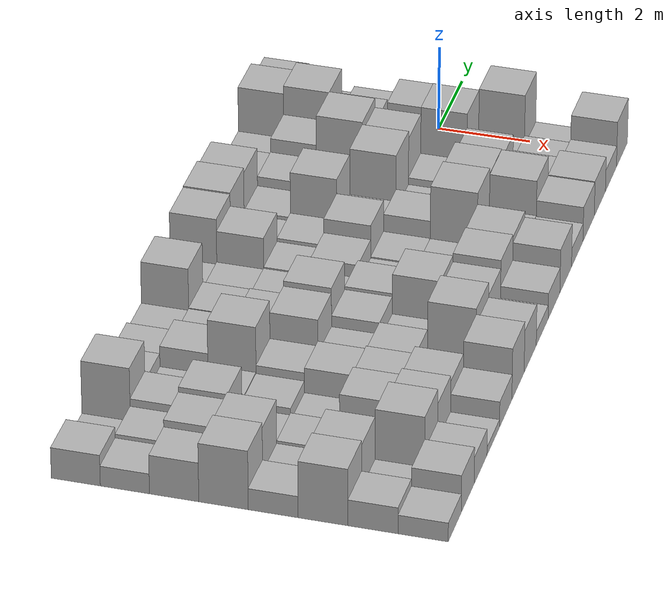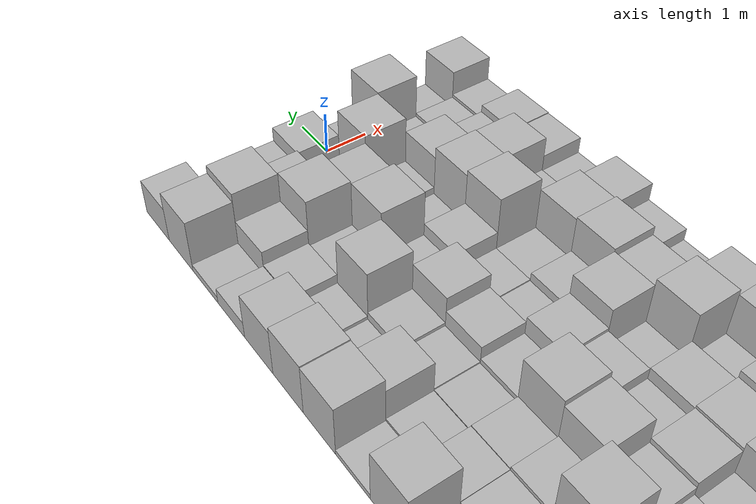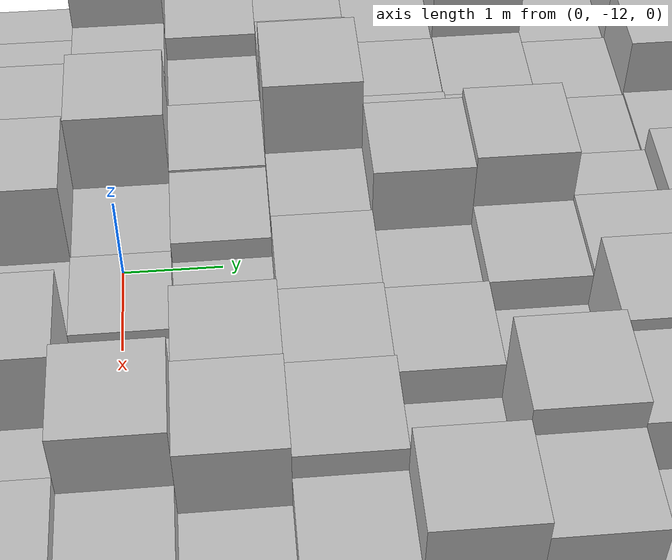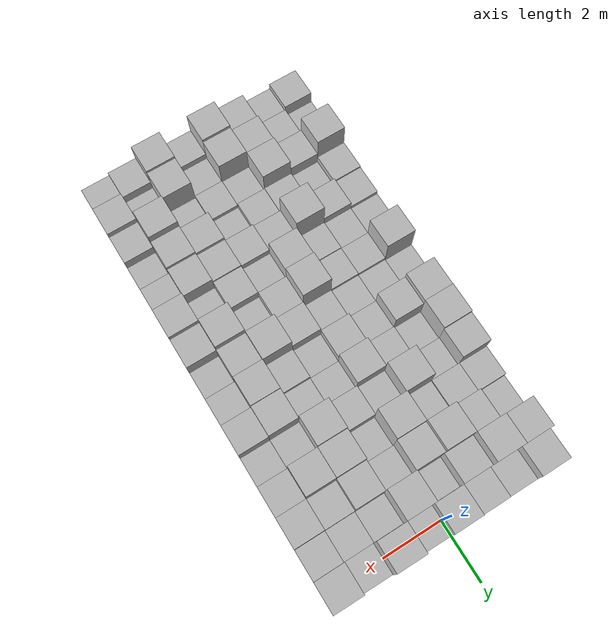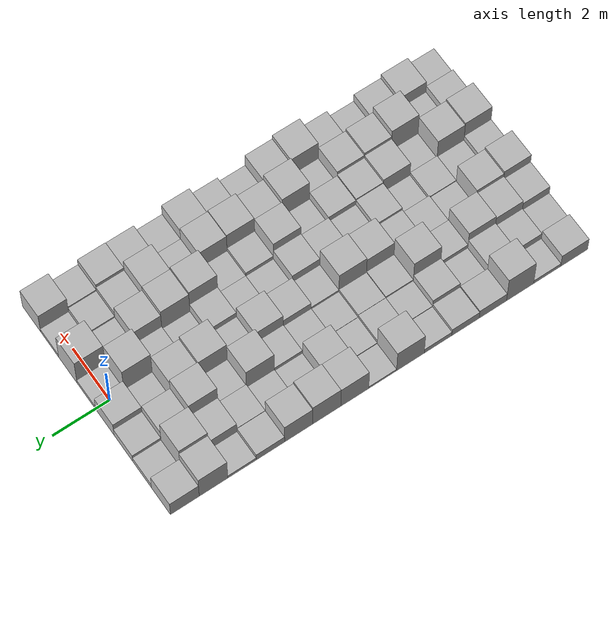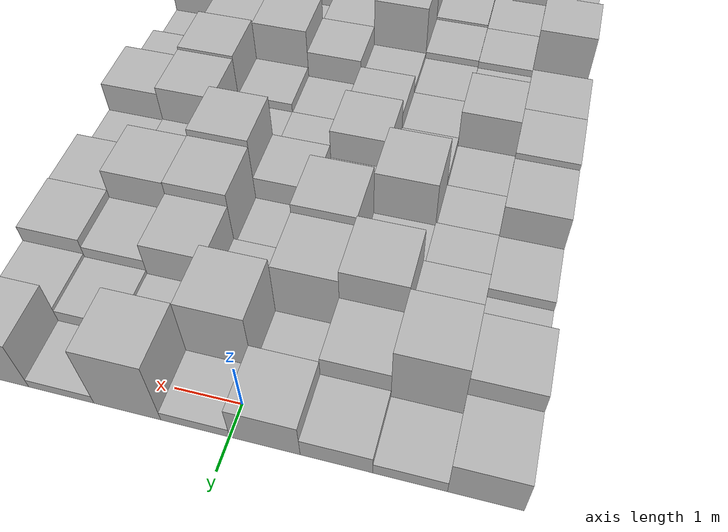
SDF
<sdf version="1.6">
 <model name="Terrain">
  <static>true</static>
  <link name="box_0_0">
   <pose>-3.5 0.0 0.417745159737 0 0 0</pose>
   <inertial>
    <mass>1.0</mass>
    <inertia><ixx>0.083</ixx><ixy>0.0</ixy><ixz>0.0</ixz><iyy>0.083</iyy><iyz>0.0</iyz><izz>0.083</izz></inertia>
   </inertial>
   <collision name="collision"><geometry><box><size>1.0 1.0 0.835490319475</size></box></geometry></collision>
   <visual name="visual"><geometry><box><size>1.0 1.0 0.835490319475</size></box></geometry></visual>
  </link>
  <link name="box_0_1">
   <pose>-3.5 -1.0 0.628804138089 0 0 0</pose>
   <inertial>
    <mass>1.0</mass>
    <inertia><ixx>0.083</ixx><ixy>0.0</ixy><ixz>0.0</ixz><iyy>0.083</iyy><iyz>0.0</iyz><izz>0.083</izz></inertia>
   </inertial>
   <collision name="collision"><geometry><box><size>1.0 1.0 1.25760827618</size></box></geometry></collision>
   <visual name="visual"><geometry><box><size>1.0 1.0 1.25760827618</size></box></geometry></visual>
  </link>
  <link name="box_0_2">
   <pose>-3.5 -2.0 0.0851426585516 0 0 0</pose>
   <inertial>
    <mass>1.0</mass>
    <inertia><ixx>0.083</ixx><ixy>0.0</ixy><ixz>0.0</ixz><iyy>0.083</iyy><iyz>0.0</iyz><izz>0.083</izz></inertia>
   </inertial>
   <collision name="collision"><geometry><box><size>1.0 1.0 0.170285317103</size></box></geometry></collision>
   <visual name="visual"><geometry><box><size>1.0 1.0 0.170285317103</size></box></geometry></visual>
  </link>
  <link name="box_0_3">
   <pose>-3.5 -3.0 0.195820164618 0 0 0</pose>
   <inertial>
    <mass>1.0</mass>
    <inertia><ixx>0.083</ixx><ixy>0.0</ixy><ixz>0.0</ixz><iyy>0.083</iyy><iyz>0.0</iyz><izz>0.083</izz></inertia>
   </inertial>
   <collision name="collision"><geometry><box><size>1.0 1.0 0.391640329236</size></box></geometry></collision>
   <visual name="visual"><geometry><box><size>1.0 1.0 0.391640329236</size></box></geometry></visual>
  </link>
  <link name="box_0_4">
   <pose>-3.5 -4.0 0.556168339486 0 0 0</pose>
   <inertial>
    <mass>1.0</mass>
    <inertia><ixx>0.083</ixx><ixy>0.0</ixy><ixz>0.0</ixz><iyy>0.083</iyy><iyz>0.0</iyz><izz>0.083</izz></inertia>
   </inertial>
   <collision name="collision"><geometry><box><size>1.0 1.0 1.11233667897</size></box></geometry></collision>
   <visual name="visual"><geometry><box><size>1.0 1.0 1.11233667897</size></box></geometry></visual>
  </link>
  <link name="box_0_5">
   <pose>-3.5 -5.0 0.619294533796 0 0 0</pose>
   <inertial>
    <mass>1.0</mass>
    <inertia><ixx>0.083</ixx><ixy>0.0</ixy><ixz>0.0</ixz><iyy>0.083</iyy><iyz>0.0</iyz><izz>0.083</izz></inertia>
   </inertial>
   <collision name="collision"><geometry><box><size>1.0 1.0 1.23858906759</size></box></geometry></collision>
   <visual name="visual"><geometry><box><size>1.0 1.0 1.23858906759</size></box></geometry></visual>
  </link>
  <link name="box_0_6">
   <pose>-3.5 -6.0 0.604735536653 0 0 0</pose>
   <inertial>
    <mass>1.0</mass>
    <inertia><ixx>0.083</ixx><ixy>0.0</ixy><ixz>0.0</ixz><iyy>0.083</iyy><iyz>0.0</iyz><izz>0.083</izz></inertia>
   </inertial>
   <collision name="collision"><geometry><box><size>1.0 1.0 1.20947107331</size></box></geometry></collision>
   <visual name="visual"><geometry><box><size>1.0 1.0 1.20947107331</size></box></geometry></visual>
  </link>
  <link name="box_0_7">
   <pose>-3.5 -7.0 0.0607612955176 0 0 0</pose>
   <inertial>
    <mass>1.0</mass>
    <inertia><ixx>0.083</ixx><ixy>0.0</ixy><ixz>0.0</ixz><iyy>0.083</iyy><iyz>0.0</iyz><izz>0.083</izz></inertia>
   </inertial>
   <collision name="collision"><geometry><box><size>1.0 1.0 0.121522591035</size></box></geometry></collision>
   <visual name="visual"><geometry><box><size>1.0 1.0 0.121522591035</size></box></geometry></visual>
  </link>
  <link name="box_0_8">
   <pose>-3.5 -8.0 0.630093040695 0 0 0</pose>
   <inertial>
    <mass>1.0</mass>
    <inertia><ixx>0.083</ixx><ixy>0.0</ixy><ixz>0.0</ixz><iyy>0.083</iyy><iyz>0.0</iyz><izz>0.083</izz></inertia>
   </inertial>
   <collision name="collision"><geometry><box><size>1.0 1.0 1.26018608139</size></box></geometry></collision>
   <visual name="visual"><geometry><box><size>1.0 1.0 1.26018608139</size></box></geometry></visual>
  </link>
  <link name="box_0_9">
   <pose>-3.5 -9.0 0.132783228985 0 0 0</pose>
   <inertial>
    <mass>1.0</mass>
    <inertia><ixx>0.083</ixx><ixy>0.0</ixy><ixz>0.0</ixz><iyy>0.083</iyy><iyz>0.0</iyz><izz>0.083</izz></inertia>
   </inertial>
   <collision name="collision"><geometry><box><size>1.0 1.0 0.26556645797</size></box></geometry></collision>
   <visual name="visual"><geometry><box><size>1.0 1.0 0.26556645797</size></box></geometry></visual>
  </link>
  <link name="box_0_10">
   <pose>-3.5 -10.0 0.214963397513 0 0 0</pose>
   <inertial>
    <mass>1.0</mass>
    <inertia><ixx>0.083</ixx><ixy>0.0</ixy><ixz>0.0</ixz><iyy>0.083</iyy><iyz>0.0</iyz><izz>0.083</izz></inertia>
   </inertial>
   <collision name="collision"><geometry><box><size>1.0 1.0 0.429926795026</size></box></geometry></collision>
   <visual name="visual"><geometry><box><size>1.0 1.0 0.429926795026</size></box></geometry></visual>
  </link>
  <link name="box_0_11">
   <pose>-3.5 -11.0 0.255203327798 0 0 0</pose>
   <inertial>
    <mass>1.0</mass>
    <inertia><ixx>0.083</ixx><ixy>0.0</ixy><ixz>0.0</ixz><iyy>0.083</iyy><iyz>0.0</iyz><izz>0.083</izz></inertia>
   </inertial>
   <collision name="collision"><geometry><box><size>1.0 1.0 0.510406655596</size></box></geometry></collision>
   <visual name="visual"><geometry><box><size>1.0 1.0 0.510406655596</size></box></geometry></visual>
  </link>
  <link name="box_0_12">
   <pose>-3.5 -12.0 0.726490676676 0 0 0</pose>
   <inertial>
    <mass>1.0</mass>
    <inertia><ixx>0.083</ixx><ixy>0.0</ixy><ixz>0.0</ixz><iyy>0.083</iyy><iyz>0.0</iyz><izz>0.083</izz></inertia>
   </inertial>
   <collision name="collision"><geometry><box><size>1.0 1.0 1.45298135335</size></box></geometry></collision>
   <visual name="visual"><geometry><box><size>1.0 1.0 1.45298135335</size></box></geometry></visual>
  </link>
  <link name="box_0_13">
   <pose>-3.5 -13.0 0.10314080423 0 0 0</pose>
   <inertial>
    <mass>1.0</mass>
    <inertia><ixx>0.083</ixx><ixy>0.0</ixy><ixz>0.0</ixz><iyy>0.083</iyy><iyz>0.0</iyz><izz>0.083</izz></inertia>
   </inertial>
   <collision name="collision"><geometry><box><size>1.0 1.0 0.206281608459</size></box></geometry></collision>
   <visual name="visual"><geometry><box><size>1.0 1.0 0.206281608459</size></box></geometry></visual>
  </link>
  <link name="box_0_14">
   <pose>-3.5 -14.0 0.362036572515 0 0 0</pose>
   <inertial>
    <mass>1.0</mass>
    <inertia><ixx>0.083</ixx><ixy>0.0</ixy><ixz>0.0</ixz><iyy>0.083</iyy><iyz>0.0</iyz><izz>0.083</izz></inertia>
   </inertial>
   <collision name="collision"><geometry><box><size>1.0 1.0 0.724073145029</size></box></geometry></collision>
   <visual name="visual"><geometry><box><size>1.0 1.0 0.724073145029</size></box></geometry></visual>
  </link>
  <link name="box_1_0">
   <pose>-2.5 0.0 0.13550543962 0 0 0</pose>
   <inertial>
    <mass>1.0</mass>
    <inertia><ixx>0.083</ixx><ixy>0.0</ixy><ixz>0.0</ixz><iyy>0.083</iyy><iyz>0.0</iyz><izz>0.083</izz></inertia>
   </inertial>
   <collision name="collision"><geometry><box><size>1.0 1.0 0.27101087924</size></box></geometry></collision>
   <visual name="visual"><geometry><box><size>1.0 1.0 0.27101087924</size></box></geometry></visual>
  </link>
  <link name="box_1_1">
   <pose>-2.5 -1.0 0.726013910653 0 0 0</pose>
   <inertial>
    <mass>1.0</mass>
    <inertia><ixx>0.083</ixx><ixy>0.0</ixy><ixz>0.0</ixz><iyy>0.083</iyy><iyz>0.0</iyz><izz>0.083</izz></inertia>
   </inertial>
   <collision name="collision"><geometry><box><size>1.0 1.0 1.45202782131</size></box></geometry></collision>
   <visual name="visual"><geometry><box><size>1.0 1.0 1.45202782131</size></box></geometry></visual>
  </link>
  <link name="box_1_2">
   <pose>-2.5 -2.0 0.375129767033 0 0 0</pose>
   <inertial>
    <mass>1.0</mass>
    <inertia><ixx>0.083</ixx><ixy>0.0</ixy><ixz>0.0</ixz><iyy>0.083</iyy><iyz>0.0</iyz><izz>0.083</izz></inertia>
   </inertial>
   <collision name="collision"><geometry><box><size>1.0 1.0 0.750259534066</size></box></geometry></collision>
   <visual name="visual"><geometry><box><size>1.0 1.0 0.750259534066</size></box></geometry></visual>
  </link>
  <link name="box_1_3">
   <pose>-2.5 -3.0 0.208997817152 0 0 0</pose>
   <inertial>
    <mass>1.0</mass>
    <inertia><ixx>0.083</ixx><ixy>0.0</ixy><ixz>0.0</ixz><iyy>0.083</iyy><iyz>0.0</iyz><izz>0.083</izz></inertia>
   </inertial>
   <collision name="collision"><geometry><box><size>1.0 1.0 0.417995634303</size></box></geometry></collision>
   <visual name="visual"><geometry><box><size>1.0 1.0 0.417995634303</size></box></geometry></visual>
  </link>
  <link name="box_1_4">
   <pose>-2.5 -4.0 0.0964454472175 0 0 0</pose>
   <inertial>
    <mass>1.0</mass>
    <inertia><ixx>0.083</ixx><ixy>0.0</ixy><ixz>0.0</ixz><iyy>0.083</iyy><iyz>0.0</iyz><izz>0.083</izz></inertia>
   </inertial>
   <collision name="collision"><geometry><box><size>1.0 1.0 0.192890894435</size></box></geometry></collision>
   <visual name="visual"><geometry><box><size>1.0 1.0 0.192890894435</size></box></geometry></visual>
  </link>
  <link name="box_1_5">
   <pose>-2.5 -5.0 0.0562978745284 0 0 0</pose>
   <inertial>
    <mass>1.0</mass>
    <inertia><ixx>0.083</ixx><ixy>0.0</ixy><ixz>0.0</ixz><iyy>0.083</iyy><iyz>0.0</iyz><izz>0.083</izz></inertia>
   </inertial>
   <collision name="collision"><geometry><box><size>1.0 1.0 0.112595749057</size></box></geometry></collision>
   <visual name="visual"><geometry><box><size>1.0 1.0 0.112595749057</size></box></geometry></visual>
  </link>
  <link name="box_1_6">
   <pose>-2.5 -6.0 0.460396959695 0 0 0</pose>
   <inertial>
    <mass>1.0</mass>
    <inertia><ixx>0.083</ixx><ixy>0.0</ixy><ixz>0.0</ixz><iyy>0.083</iyy><iyz>0.0</iyz><izz>0.083</izz></inertia>
   </inertial>
   <collision name="collision"><geometry><box><size>1.0 1.0 0.920793919391</size></box></geometry></collision>
   <visual name="visual"><geometry><box><size>1.0 1.0 0.920793919391</size></box></geometry></visual>
  </link>
  <link name="box_1_7">
   <pose>-2.5 -7.0 0.0869456284371 0 0 0</pose>
   <inertial>
    <mass>1.0</mass>
    <inertia><ixx>0.083</ixx><ixy>0.0</ixy><ixz>0.0</ixz><iyy>0.083</iyy><iyz>0.0</iyz><izz>0.083</izz></inertia>
   </inertial>
   <collision name="collision"><geometry><box><size>1.0 1.0 0.173891256874</size></box></geometry></collision>
   <visual name="visual"><geometry><box><size>1.0 1.0 0.173891256874</size></box></geometry></visual>
  </link>
  <link name="box_1_8">
   <pose>-2.5 -8.0 0.161309622204 0 0 0</pose>
   <inertial>
    <mass>1.0</mass>
    <inertia><ixx>0.083</ixx><ixy>0.0</ixy><ixz>0.0</ixz><iyy>0.083</iyy><iyz>0.0</iyz><izz>0.083</izz></inertia>
   </inertial>
   <collision name="collision"><geometry><box><size>1.0 1.0 0.322619244408</size></box></geometry></collision>
   <visual name="visual"><geometry><box><size>1.0 1.0 0.322619244408</size></box></geometry></visual>
  </link>
  <link name="box_1_9">
   <pose>-2.5 -9.0 0.152661184607 0 0 0</pose>
   <inertial>
    <mass>1.0</mass>
    <inertia><ixx>0.083</ixx><ixy>0.0</ixy><ixz>0.0</ixz><iyy>0.083</iyy><iyz>0.0</iyz><izz>0.083</izz></inertia>
   </inertial>
   <collision name="collision"><geometry><box><size>1.0 1.0 0.305322369214</size></box></geometry></collision>
   <visual name="visual"><geometry><box><size>1.0 1.0 0.305322369214</size></box></geometry></visual>
  </link>
  <link name="box_1_10">
   <pose>-2.5 -10.0 0.341582008617 0 0 0</pose>
   <inertial>
    <mass>1.0</mass>
    <inertia><ixx>0.083</ixx><ixy>0.0</ixy><ixz>0.0</ixz><iyy>0.083</iyy><iyz>0.0</iyz><izz>0.083</izz></inertia>
   </inertial>
   <collision name="collision"><geometry><box><size>1.0 1.0 0.683164017234</size></box></geometry></collision>
   <visual name="visual"><geometry><box><size>1.0 1.0 0.683164017234</size></box></geometry></visual>
  </link>
  <link name="box_1_11">
   <pose>-2.5 -11.0 0.0978201423521 0 0 0</pose>
   <inertial>
    <mass>1.0</mass>
    <inertia><ixx>0.083</ixx><ixy>0.0</ixy><ixz>0.0</ixz><iyy>0.083</iyy><iyz>0.0</iyz><izz>0.083</izz></inertia>
   </inertial>
   <collision name="collision"><geometry><box><size>1.0 1.0 0.195640284704</size></box></geometry></collision>
   <visual name="visual"><geometry><box><size>1.0 1.0 0.195640284704</size></box></geometry></visual>
  </link>
  <link name="box_1_12">
   <pose>-2.5 -12.0 0.367014219254 0 0 0</pose>
   <inertial>
    <mass>1.0</mass>
    <inertia><ixx>0.083</ixx><ixy>0.0</ixy><ixz>0.0</ixz><iyy>0.083</iyy><iyz>0.0</iyz><izz>0.083</izz></inertia>
   </inertial>
   <collision name="collision"><geometry><box><size>1.0 1.0 0.734028438509</size></box></geometry></collision>
   <visual name="visual"><geometry><box><size>1.0 1.0 0.734028438509</size></box></geometry></visual>
  </link>
  <link name="box_1_13">
   <pose>-2.5 -13.0 0.279296993047 0 0 0</pose>
   <inertial>
    <mass>1.0</mass>
    <inertia><ixx>0.083</ixx><ixy>0.0</ixy><ixz>0.0</ixz><iyy>0.083</iyy><iyz>0.0</iyz><izz>0.083</izz></inertia>
   </inertial>
   <collision name="collision"><geometry><box><size>1.0 1.0 0.558593986095</size></box></geometry></collision>
   <visual name="visual"><geometry><box><size>1.0 1.0 0.558593986095</size></box></geometry></visual>
  </link>
  <link name="box_1_14">
   <pose>-2.5 -14.0 0.235284861385 0 0 0</pose>
   <inertial>
    <mass>1.0</mass>
    <inertia><ixx>0.083</ixx><ixy>0.0</ixy><ixz>0.0</ixz><iyy>0.083</iyy><iyz>0.0</iyz><izz>0.083</izz></inertia>
   </inertial>
   <collision name="collision"><geometry><box><size>1.0 1.0 0.47056972277</size></box></geometry></collision>
   <visual name="visual"><geometry><box><size>1.0 1.0 0.47056972277</size></box></geometry></visual>
  </link>
  <link name="box_2_0">
   <pose>-1.5 0.0 0.216664329808 0 0 0</pose>
   <inertial>
    <mass>1.0</mass>
    <inertia><ixx>0.083</ixx><ixy>0.0</ixy><ixz>0.0</ixz><iyy>0.083</iyy><iyz>0.0</iyz><izz>0.083</izz></inertia>
   </inertial>
   <collision name="collision"><geometry><box><size>1.0 1.0 0.433328659617</size></box></geometry></collision>
   <visual name="visual"><geometry><box><size>1.0 1.0 0.433328659617</size></box></geometry></visual>
  </link>
  <link name="box_2_1">
   <pose>-1.5 -1.0 0.426060375249 0 0 0</pose>
   <inertial>
    <mass>1.0</mass>
    <inertia><ixx>0.083</ixx><ixy>0.0</ixy><ixz>0.0</ixz><iyy>0.083</iyy><iyz>0.0</iyz><izz>0.083</izz></inertia>
   </inertial>
   <collision name="collision"><geometry><box><size>1.0 1.0 0.852120750499</size></box></geometry></collision>
   <visual name="visual"><geometry><box><size>1.0 1.0 0.852120750499</size></box></geometry></visual>
  </link>
  <link name="box_2_2">
   <pose>-1.5 -2.0 0.738666099266 0 0 0</pose>
   <inertial>
    <mass>1.0</mass>
    <inertia><ixx>0.083</ixx><ixy>0.0</ixy><ixz>0.0</ixz><iyy>0.083</iyy><iyz>0.0</iyz><izz>0.083</izz></inertia>
   </inertial>
   <collision name="collision"><geometry><box><size>1.0 1.0 1.47733219853</size></box></geometry></collision>
   <visual name="visual"><geometry><box><size>1.0 1.0 1.47733219853</size></box></geometry></visual>
  </link>
  <link name="box_2_3">
   <pose>-1.5 -3.0 0.172789882983 0 0 0</pose>
   <inertial>
    <mass>1.0</mass>
    <inertia><ixx>0.083</ixx><ixy>0.0</ixy><ixz>0.0</ixz><iyy>0.083</iyy><iyz>0.0</iyz><izz>0.083</izz></inertia>
   </inertial>
   <collision name="collision"><geometry><box><size>1.0 1.0 0.345579765965</size></box></geometry></collision>
   <visual name="visual"><geometry><box><size>1.0 1.0 0.345579765965</size></box></geometry></visual>
  </link>
  <link name="box_2_4">
   <pose>-1.5 -4.0 0.645655087552 0 0 0</pose>
   <inertial>
    <mass>1.0</mass>
    <inertia><ixx>0.083</ixx><ixy>0.0</ixy><ixz>0.0</ixz><iyy>0.083</iyy><iyz>0.0</iyz><izz>0.083</izz></inertia>
   </inertial>
   <collision name="collision"><geometry><box><size>1.0 1.0 1.2913101751</size></box></geometry></collision>
   <visual name="visual"><geometry><box><size>1.0 1.0 1.2913101751</size></box></geometry></visual>
  </link>
  <link name="box_2_5">
   <pose>-1.5 -5.0 0.151310680941 0 0 0</pose>
   <inertial>
    <mass>1.0</mass>
    <inertia><ixx>0.083</ixx><ixy>0.0</ixy><ixz>0.0</ixz><iyy>0.083</iyy><iyz>0.0</iyz><izz>0.083</izz></inertia>
   </inertial>
   <collision name="collision"><geometry><box><size>1.0 1.0 0.302621361882</size></box></geometry></collision>
   <visual name="visual"><geometry><box><size>1.0 1.0 0.302621361882</size></box></geometry></visual>
  </link>
  <link name="box_2_6">
   <pose>-1.5 -6.0 0.1122067063 0 0 0</pose>
   <inertial>
    <mass>1.0</mass>
    <inertia><ixx>0.083</ixx><ixy>0.0</ixy><ixz>0.0</ixz><iyy>0.083</iyy><iyz>0.0</iyz><izz>0.083</izz></inertia>
   </inertial>
   <collision name="collision"><geometry><box><size>1.0 1.0 0.224413412601</size></box></geometry></collision>
   <visual name="visual"><geometry><box><size>1.0 1.0 0.224413412601</size></box></geometry></visual>
  </link>
  <link name="box_2_7">
   <pose>-1.5 -7.0 0.0967583786873 0 0 0</pose>
   <inertial>
    <mass>1.0</mass>
    <inertia><ixx>0.083</ixx><ixy>0.0</ixy><ixz>0.0</ixz><iyy>0.083</iyy><iyz>0.0</iyz><izz>0.083</izz></inertia>
   </inertial>
   <collision name="collision"><geometry><box><size>1.0 1.0 0.193516757375</size></box></geometry></collision>
   <visual name="visual"><geometry><box><size>1.0 1.0 0.193516757375</size></box></geometry></visual>
  </link>
  <link name="box_2_8">
   <pose>-1.5 -8.0 0.169127132474 0 0 0</pose>
   <inertial>
    <mass>1.0</mass>
    <inertia><ixx>0.083</ixx><ixy>0.0</ixy><ixz>0.0</ixz><iyy>0.083</iyy><iyz>0.0</iyz><izz>0.083</izz></inertia>
   </inertial>
   <collision name="collision"><geometry><box><size>1.0 1.0 0.338254264948</size></box></geometry></collision>
   <visual name="visual"><geometry><box><size>1.0 1.0 0.338254264948</size></box></geometry></visual>
  </link>
  <link name="box_2_9">
   <pose>-1.5 -9.0 0.194800044003 0 0 0</pose>
   <inertial>
    <mass>1.0</mass>
    <inertia><ixx>0.083</ixx><ixy>0.0</ixy><ixz>0.0</ixz><iyy>0.083</iyy><iyz>0.0</iyz><izz>0.083</izz></inertia>
   </inertial>
   <collision name="collision"><geometry><box><size>1.0 1.0 0.389600088005</size></box></geometry></collision>
   <visual name="visual"><geometry><box><size>1.0 1.0 0.389600088005</size></box></geometry></visual>
  </link>
  <link name="box_2_10">
   <pose>-1.5 -10.0 0.743552029229 0 0 0</pose>
   <inertial>
    <mass>1.0</mass>
    <inertia><ixx>0.083</ixx><ixy>0.0</ixy><ixz>0.0</ixz><iyy>0.083</iyy><iyz>0.0</iyz><izz>0.083</izz></inertia>
   </inertial>
   <collision name="collision"><geometry><box><size>1.0 1.0 1.48710405846</size></box></geometry></collision>
   <visual name="visual"><geometry><box><size>1.0 1.0 1.48710405846</size></box></geometry></visual>
  </link>
  <link name="box_2_11">
   <pose>-1.5 -11.0 0.207563838125 0 0 0</pose>
   <inertial>
    <mass>1.0</mass>
    <inertia><ixx>0.083</ixx><ixy>0.0</ixy><ixz>0.0</ixz><iyy>0.083</iyy><iyz>0.0</iyz><izz>0.083</izz></inertia>
   </inertial>
   <collision name="collision"><geometry><box><size>1.0 1.0 0.41512767625</size></box></geometry></collision>
   <visual name="visual"><geometry><box><size>1.0 1.0 0.41512767625</size></box></geometry></visual>
  </link>
  <link name="box_2_12">
   <pose>-1.5 -12.0 0.598522405695 0 0 0</pose>
   <inertial>
    <mass>1.0</mass>
    <inertia><ixx>0.083</ixx><ixy>0.0</ixy><ixz>0.0</ixz><iyy>0.083</iyy><iyz>0.0</iyz><izz>0.083</izz></inertia>
   </inertial>
   <collision name="collision"><geometry><box><size>1.0 1.0 1.19704481139</size></box></geometry></collision>
   <visual name="visual"><geometry><box><size>1.0 1.0 1.19704481139</size></box></geometry></visual>
  </link>
  <link name="box_2_13">
   <pose>-1.5 -13.0 0.539018685183 0 0 0</pose>
   <inertial>
    <mass>1.0</mass>
    <inertia><ixx>0.083</ixx><ixy>0.0</ixy><ixz>0.0</ixz><iyy>0.083</iyy><iyz>0.0</iyz><izz>0.083</izz></inertia>
   </inertial>
   <collision name="collision"><geometry><box><size>1.0 1.0 1.07803737037</size></box></geometry></collision>
   <visual name="visual"><geometry><box><size>1.0 1.0 1.07803737037</size></box></geometry></visual>
  </link>
  <link name="box_2_14">
   <pose>-1.5 -14.0 0.457222023088 0 0 0</pose>
   <inertial>
    <mass>1.0</mass>
    <inertia><ixx>0.083</ixx><ixy>0.0</ixy><ixz>0.0</ixz><iyy>0.083</iyy><iyz>0.0</iyz><izz>0.083</izz></inertia>
   </inertial>
   <collision name="collision"><geometry><box><size>1.0 1.0 0.914444046175</size></box></geometry></collision>
   <visual name="visual"><geometry><box><size>1.0 1.0 0.914444046175</size></box></geometry></visual>
  </link>
  <link name="box_3_0">
   <pose>-0.5 0.0 0.389048587632 0 0 0</pose>
   <inertial>
    <mass>1.0</mass>
    <inertia><ixx>0.083</ixx><ixy>0.0</ixy><ixz>0.0</ixz><iyy>0.083</iyy><iyz>0.0</iyz><izz>0.083</izz></inertia>
   </inertial>
   <collision name="collision"><geometry><box><size>1.0 1.0 0.778097175265</size></box></geometry></collision>
   <visual name="visual"><geometry><box><size>1.0 1.0 0.778097175265</size></box></geometry></visual>
  </link>
  <link name="box_3_1">
   <pose>-0.5 -1.0 0.05966804592 0 0 0</pose>
   <inertial>
    <mass>1.0</mass>
    <inertia><ixx>0.083</ixx><ixy>0.0</ixy><ixz>0.0</ixz><iyy>0.083</iyy><iyz>0.0</iyz><izz>0.083</izz></inertia>
   </inertial>
   <collision name="collision"><geometry><box><size>1.0 1.0 0.11933609184</size></box></geometry></collision>
   <visual name="visual"><geometry><box><size>1.0 1.0 0.11933609184</size></box></geometry></visual>
  </link>
  <link name="box_3_2">
   <pose>-0.5 -2.0 0.626262475751 0 0 0</pose>
   <inertial>
    <mass>1.0</mass>
    <inertia><ixx>0.083</ixx><ixy>0.0</ixy><ixz>0.0</ixz><iyy>0.083</iyy><iyz>0.0</iyz><izz>0.083</izz></inertia>
   </inertial>
   <collision name="collision"><geometry><box><size>1.0 1.0 1.2525249515</size></box></geometry></collision>
   <visual name="visual"><geometry><box><size>1.0 1.0 1.2525249515</size></box></geometry></visual>
  </link>
  <link name="box_3_3">
   <pose>-0.5 -3.0 0.714838587176 0 0 0</pose>
   <inertial>
    <mass>1.0</mass>
    <inertia><ixx>0.083</ixx><ixy>0.0</ixy><ixz>0.0</ixz><iyy>0.083</iyy><iyz>0.0</iyz><izz>0.083</izz></inertia>
   </inertial>
   <collision name="collision"><geometry><box><size>1.0 1.0 1.42967717435</size></box></geometry></collision>
   <visual name="visual"><geometry><box><size>1.0 1.0 1.42967717435</size></box></geometry></visual>
  </link>
  <link name="box_3_4">
   <pose>-0.5 -4.0 0.15687675474 0 0 0</pose>
   <inertial>
    <mass>1.0</mass>
    <inertia><ixx>0.083</ixx><ixy>0.0</ixy><ixz>0.0</ixz><iyy>0.083</iyy><iyz>0.0</iyz><izz>0.083</izz></inertia>
   </inertial>
   <collision name="collision"><geometry><box><size>1.0 1.0 0.313753509479</size></box></geometry></collision>
   <visual name="visual"><geometry><box><size>1.0 1.0 0.313753509479</size></box></geometry></visual>
  </link>
  <link name="box_3_5">
   <pose>-0.5 -5.0 0.474329483885 0 0 0</pose>
   <inertial>
    <mass>1.0</mass>
    <inertia><ixx>0.083</ixx><ixy>0.0</ixy><ixz>0.0</ixz><iyy>0.083</iyy><iyz>0.0</iyz><izz>0.083</izz></inertia>
   </inertial>
   <collision name="collision"><geometry><box><size>1.0 1.0 0.94865896777</size></box></geometry></collision>
   <visual name="visual"><geometry><box><size>1.0 1.0 0.94865896777</size></box></geometry></visual>
  </link>
  <link name="box_3_6">
   <pose>-0.5 -6.0 0.305637160407 0 0 0</pose>
   <inertial>
    <mass>1.0</mass>
    <inertia><ixx>0.083</ixx><ixy>0.0</ixy><ixz>0.0</ixz><iyy>0.083</iyy><iyz>0.0</iyz><izz>0.083</izz></inertia>
   </inertial>
   <collision name="collision"><geometry><box><size>1.0 1.0 0.611274320813</size></box></geometry></collision>
   <visual name="visual"><geometry><box><size>1.0 1.0 0.611274320813</size></box></geometry></visual>
  </link>
  <link name="box_3_7">
   <pose>-0.5 -7.0 0.155432009846 0 0 0</pose>
   <inertial>
    <mass>1.0</mass>
    <inertia><ixx>0.083</ixx><ixy>0.0</ixy><ixz>0.0</ixz><iyy>0.083</iyy><iyz>0.0</iyz><izz>0.083</izz></inertia>
   </inertial>
   <collision name="collision"><geometry><box><size>1.0 1.0 0.310864019692</size></box></geometry></collision>
   <visual name="visual"><geometry><box><size>1.0 1.0 0.310864019692</size></box></geometry></visual>
  </link>
  <link name="box_3_8">
   <pose>-0.5 -8.0 0.661415609099 0 0 0</pose>
   <inertial>
    <mass>1.0</mass>
    <inertia><ixx>0.083</ixx><ixy>0.0</ixy><ixz>0.0</ixz><iyy>0.083</iyy><iyz>0.0</iyz><izz>0.083</izz></inertia>
   </inertial>
   <collision name="collision"><geometry><box><size>1.0 1.0 1.3228312182</size></box></geometry></collision>
   <visual name="visual"><geometry><box><size>1.0 1.0 1.3228312182</size></box></geometry></visual>
  </link>
  <link name="box_3_9">
   <pose>-0.5 -9.0 0.600367190831 0 0 0</pose>
   <inertial>
    <mass>1.0</mass>
    <inertia><ixx>0.083</ixx><ixy>0.0</ixy><ixz>0.0</ixz><iyy>0.083</iyy><iyz>0.0</iyz><izz>0.083</izz></inertia>
   </inertial>
   <collision name="collision"><geometry><box><size>1.0 1.0 1.20073438166</size></box></geometry></collision>
   <visual name="visual"><geometry><box><size>1.0 1.0 1.20073438166</size></box></geometry></visual>
  </link>
  <link name="box_3_10">
   <pose>-0.5 -10.0 0.290649590029 0 0 0</pose>
   <inertial>
    <mass>1.0</mass>
    <inertia><ixx>0.083</ixx><ixy>0.0</ixy><ixz>0.0</ixz><iyy>0.083</iyy><iyz>0.0</iyz><izz>0.083</izz></inertia>
   </inertial>
   <collision name="collision"><geometry><box><size>1.0 1.0 0.581299180057</size></box></geometry></collision>
   <visual name="visual"><geometry><box><size>1.0 1.0 0.581299180057</size></box></geometry></visual>
  </link>
  <link name="box_3_11">
   <pose>-0.5 -11.0 0.194645086025 0 0 0</pose>
   <inertial>
    <mass>1.0</mass>
    <inertia><ixx>0.083</ixx><ixy>0.0</ixy><ixz>0.0</ixz><iyy>0.083</iyy><iyz>0.0</iyz><izz>0.083</izz></inertia>
   </inertial>
   <collision name="collision"><geometry><box><size>1.0 1.0 0.38929017205</size></box></geometry></collision>
   <visual name="visual"><geometry><box><size>1.0 1.0 0.38929017205</size></box></geometry></visual>
  </link>
  <link name="box_3_12">
   <pose>-0.5 -12.0 0.116747505975 0 0 0</pose>
   <inertial>
    <mass>1.0</mass>
    <inertia><ixx>0.083</ixx><ixy>0.0</ixy><ixz>0.0</ixz><iyy>0.083</iyy><iyz>0.0</iyz><izz>0.083</izz></inertia>
   </inertial>
   <collision name="collision"><geometry><box><size>1.0 1.0 0.23349501195</size></box></geometry></collision>
   <visual name="visual"><geometry><box><size>1.0 1.0 0.23349501195</size></box></geometry></visual>
  </link>
  <link name="box_3_13">
   <pose>-0.5 -13.0 0.629129049723 0 0 0</pose>
   <inertial>
    <mass>1.0</mass>
    <inertia><ixx>0.083</ixx><ixy>0.0</ixy><ixz>0.0</ixz><iyy>0.083</iyy><iyz>0.0</iyz><izz>0.083</izz></inertia>
   </inertial>
   <collision name="collision"><geometry><box><size>1.0 1.0 1.25825809945</size></box></geometry></collision>
   <visual name="visual"><geometry><box><size>1.0 1.0 1.25825809945</size></box></geometry></visual>
  </link>
  <link name="box_3_14">
   <pose>-0.5 -14.0 0.689421502883 0 0 0</pose>
   <inertial>
    <mass>1.0</mass>
    <inertia><ixx>0.083</ixx><ixy>0.0</ixy><ixz>0.0</ixz><iyy>0.083</iyy><iyz>0.0</iyz><izz>0.083</izz></inertia>
   </inertial>
   <collision name="collision"><geometry><box><size>1.0 1.0 1.37884300577</size></box></geometry></collision>
   <visual name="visual"><geometry><box><size>1.0 1.0 1.37884300577</size></box></geometry></visual>
  </link>
  <link name="box_4_0">
   <pose>0.5 0.0 0.107094591612 0 0 0</pose>
   <inertial>
    <mass>1.0</mass>
    <inertia><ixx>0.083</ixx><ixy>0.0</ixy><ixz>0.0</ixz><iyy>0.083</iyy><iyz>0.0</iyz><izz>0.083</izz></inertia>
   </inertial>
   <collision name="collision"><geometry><box><size>1.0 1.0 0.214189183224</size></box></geometry></collision>
   <visual name="visual"><geometry><box><size>1.0 1.0 0.214189183224</size></box></geometry></visual>
  </link>
  <link name="box_4_1">
   <pose>0.5 -1.0 0.708990648179 0 0 0</pose>
   <inertial>
    <mass>1.0</mass>
    <inertia><ixx>0.083</ixx><ixy>0.0</ixy><ixz>0.0</ixz><iyy>0.083</iyy><iyz>0.0</iyz><izz>0.083</izz></inertia>
   </inertial>
   <collision name="collision"><geometry><box><size>1.0 1.0 1.41798129636</size></box></geometry></collision>
   <visual name="visual"><geometry><box><size>1.0 1.0 1.41798129636</size></box></geometry></visual>
  </link>
  <link name="box_4_2">
   <pose>0.5 -2.0 0.142020141918 0 0 0</pose>
   <inertial>
    <mass>1.0</mass>
    <inertia><ixx>0.083</ixx><ixy>0.0</ixy><ixz>0.0</ixz><iyy>0.083</iyy><iyz>0.0</iyz><izz>0.083</izz></inertia>
   </inertial>
   <collision name="collision"><geometry><box><size>1.0 1.0 0.284040283835</size></box></geometry></collision>
   <visual name="visual"><geometry><box><size>1.0 1.0 0.284040283835</size></box></geometry></visual>
  </link>
  <link name="box_4_3">
   <pose>0.5 -3.0 0.0597800224116 0 0 0</pose>
   <inertial>
    <mass>1.0</mass>
    <inertia><ixx>0.083</ixx><ixy>0.0</ixy><ixz>0.0</ixz><iyy>0.083</iyy><iyz>0.0</iyz><izz>0.083</izz></inertia>
   </inertial>
   <collision name="collision"><geometry><box><size>1.0 1.0 0.119560044823</size></box></geometry></collision>
   <visual name="visual"><geometry><box><size>1.0 1.0 0.119560044823</size></box></geometry></visual>
  </link>
  <link name="box_4_4">
   <pose>0.5 -4.0 0.305521781295 0 0 0</pose>
   <inertial>
    <mass>1.0</mass>
    <inertia><ixx>0.083</ixx><ixy>0.0</ixy><ixz>0.0</ixz><iyy>0.083</iyy><iyz>0.0</iyz><izz>0.083</izz></inertia>
   </inertial>
   <collision name="collision"><geometry><box><size>1.0 1.0 0.61104356259</size></box></geometry></collision>
   <visual name="visual"><geometry><box><size>1.0 1.0 0.61104356259</size></box></geometry></visual>
  </link>
  <link name="box_4_5">
   <pose>0.5 -5.0 0.0970934811277 0 0 0</pose>
   <inertial>
    <mass>1.0</mass>
    <inertia><ixx>0.083</ixx><ixy>0.0</ixy><ixz>0.0</ixz><iyy>0.083</iyy><iyz>0.0</iyz><izz>0.083</izz></inertia>
   </inertial>
   <collision name="collision"><geometry><box><size>1.0 1.0 0.194186962255</size></box></geometry></collision>
   <visual name="visual"><geometry><box><size>1.0 1.0 0.194186962255</size></box></geometry></visual>
  </link>
  <link name="box_4_6">
   <pose>0.5 -6.0 0.0823342555622 0 0 0</pose>
   <inertial>
    <mass>1.0</mass>
    <inertia><ixx>0.083</ixx><ixy>0.0</ixy><ixz>0.0</ixz><iyy>0.083</iyy><iyz>0.0</iyz><izz>0.083</izz></inertia>
   </inertial>
   <collision name="collision"><geometry><box><size>1.0 1.0 0.164668511124</size></box></geometry></collision>
   <visual name="visual"><geometry><box><size>1.0 1.0 0.164668511124</size></box></geometry></visual>
  </link>
  <link name="box_4_7">
   <pose>0.5 -7.0 0.36635511404 0 0 0</pose>
   <inertial>
    <mass>1.0</mass>
    <inertia><ixx>0.083</ixx><ixy>0.0</ixy><ixz>0.0</ixz><iyy>0.083</iyy><iyz>0.0</iyz><izz>0.083</izz></inertia>
   </inertial>
   <collision name="collision"><geometry><box><size>1.0 1.0 0.73271022808</size></box></geometry></collision>
   <visual name="visual"><geometry><box><size>1.0 1.0 0.73271022808</size></box></geometry></visual>
  </link>
  <link name="box_4_8">
   <pose>0.5 -8.0 0.331071156137 0 0 0</pose>
   <inertial>
    <mass>1.0</mass>
    <inertia><ixx>0.083</ixx><ixy>0.0</ixy><ixz>0.0</ixz><iyy>0.083</iyy><iyz>0.0</iyz><izz>0.083</izz></inertia>
   </inertial>
   <collision name="collision"><geometry><box><size>1.0 1.0 0.662142312275</size></box></geometry></collision>
   <visual name="visual"><geometry><box><size>1.0 1.0 0.662142312275</size></box></geometry></visual>
  </link>
  <link name="box_4_9">
   <pose>0.5 -9.0 0.200547676012 0 0 0</pose>
   <inertial>
    <mass>1.0</mass>
    <inertia><ixx>0.083</ixx><ixy>0.0</ixy><ixz>0.0</ixz><iyy>0.083</iyy><iyz>0.0</iyz><izz>0.083</izz></inertia>
   </inertial>
   <collision name="collision"><geometry><box><size>1.0 1.0 0.401095352025</size></box></geometry></collision>
   <visual name="visual"><geometry><box><size>1.0 1.0 0.401095352025</size></box></geometry></visual>
  </link>
  <link name="box_4_10">
   <pose>0.5 -10.0 0.34864260395 0 0 0</pose>
   <inertial>
    <mass>1.0</mass>
    <inertia><ixx>0.083</ixx><ixy>0.0</ixy><ixz>0.0</ixz><iyy>0.083</iyy><iyz>0.0</iyz><izz>0.083</izz></inertia>
   </inertial>
   <collision name="collision"><geometry><box><size>1.0 1.0 0.697285207899</size></box></geometry></collision>
   <visual name="visual"><geometry><box><size>1.0 1.0 0.697285207899</size></box></geometry></visual>
  </link>
  <link name="box_4_11">
   <pose>0.5 -11.0 0.0548163919665 0 0 0</pose>
   <inertial>
    <mass>1.0</mass>
    <inertia><ixx>0.083</ixx><ixy>0.0</ixy><ixz>0.0</ixz><iyy>0.083</iyy><iyz>0.0</iyz><izz>0.083</izz></inertia>
   </inertial>
   <collision name="collision"><geometry><box><size>1.0 1.0 0.109632783933</size></box></geometry></collision>
   <visual name="visual"><geometry><box><size>1.0 1.0 0.109632783933</size></box></geometry></visual>
  </link>
  <link name="box_4_12">
   <pose>0.5 -12.0 0.142702015767 0 0 0</pose>
   <inertial>
    <mass>1.0</mass>
    <inertia><ixx>0.083</ixx><ixy>0.0</ixy><ixz>0.0</ixz><iyy>0.083</iyy><iyz>0.0</iyz><izz>0.083</izz></inertia>
   </inertial>
   <collision name="collision"><geometry><box><size>1.0 1.0 0.285404031534</size></box></geometry></collision>
   <visual name="visual"><geometry><box><size>1.0 1.0 0.285404031534</size></box></geometry></visual>
  </link>
  <link name="box_4_13">
   <pose>0.5 -13.0 0.11171021275 0 0 0</pose>
   <inertial>
    <mass>1.0</mass>
    <inertia><ixx>0.083</ixx><ixy>0.0</ixy><ixz>0.0</ixz><iyy>0.083</iyy><iyz>0.0</iyz><izz>0.083</izz></inertia>
   </inertial>
   <collision name="collision"><geometry><box><size>1.0 1.0 0.2234204255</size></box></geometry></collision>
   <visual name="visual"><geometry><box><size>1.0 1.0 0.2234204255</size></box></geometry></visual>
  </link>
  <link name="box_4_14">
   <pose>0.5 -14.0 0.25001406063 0 0 0</pose>
   <inertial>
    <mass>1.0</mass>
    <inertia><ixx>0.083</ixx><ixy>0.0</ixy><ixz>0.0</ixz><iyy>0.083</iyy><iyz>0.0</iyz><izz>0.083</izz></inertia>
   </inertial>
   <collision name="collision"><geometry><box><size>1.0 1.0 0.50002812126</size></box></geometry></collision>
   <visual name="visual"><geometry><box><size>1.0 1.0 0.50002812126</size></box></geometry></visual>
  </link>
  <link name="box_5_0">
   <pose>1.5 0.0 0.71871456995 0 0 0</pose>
   <inertial>
    <mass>1.0</mass>
    <inertia><ixx>0.083</ixx><ixy>0.0</ixy><ixz>0.0</ixz><iyy>0.083</iyy><iyz>0.0</iyz><izz>0.083</izz></inertia>
   </inertial>
   <collision name="collision"><geometry><box><size>1.0 1.0 1.4374291399</size></box></geometry></collision>
   <visual name="visual"><geometry><box><size>1.0 1.0 1.4374291399</size></box></geometry></visual>
  </link>
  <link name="box_5_1">
   <pose>1.5 -1.0 0.183549154289 0 0 0</pose>
   <inertial>
    <mass>1.0</mass>
    <inertia><ixx>0.083</ixx><ixy>0.0</ixy><ixz>0.0</ixz><iyy>0.083</iyy><iyz>0.0</iyz><izz>0.083</izz></inertia>
   </inertial>
   <collision name="collision"><geometry><box><size>1.0 1.0 0.367098308579</size></box></geometry></collision>
   <visual name="visual"><geometry><box><size>1.0 1.0 0.367098308579</size></box></geometry></visual>
  </link>
  <link name="box_5_2">
   <pose>1.5 -2.0 0.537461358315 0 0 0</pose>
   <inertial>
    <mass>1.0</mass>
    <inertia><ixx>0.083</ixx><ixy>0.0</ixy><ixz>0.0</ixz><iyy>0.083</iyy><iyz>0.0</iyz><izz>0.083</izz></inertia>
   </inertial>
   <collision name="collision"><geometry><box><size>1.0 1.0 1.07492271663</size></box></geometry></collision>
   <visual name="visual"><geometry><box><size>1.0 1.0 1.07492271663</size></box></geometry></visual>
  </link>
  <link name="box_5_3">
   <pose>1.5 -3.0 0.665108593907 0 0 0</pose>
   <inertial>
    <mass>1.0</mass>
    <inertia><ixx>0.083</ixx><ixy>0.0</ixy><ixz>0.0</ixz><iyy>0.083</iyy><iyz>0.0</iyz><izz>0.083</izz></inertia>
   </inertial>
   <collision name="collision"><geometry><box><size>1.0 1.0 1.33021718781</size></box></geometry></collision>
   <visual name="visual"><geometry><box><size>1.0 1.0 1.33021718781</size></box></geometry></visual>
  </link>
  <link name="box_5_4">
   <pose>1.5 -4.0 0.731254151261 0 0 0</pose>
   <inertial>
    <mass>1.0</mass>
    <inertia><ixx>0.083</ixx><ixy>0.0</ixy><ixz>0.0</ixz><iyy>0.083</iyy><iyz>0.0</iyz><izz>0.083</izz></inertia>
   </inertial>
   <collision name="collision"><geometry><box><size>1.0 1.0 1.46250830252</size></box></geometry></collision>
   <visual name="visual"><geometry><box><size>1.0 1.0 1.46250830252</size></box></geometry></visual>
  </link>
  <link name="box_5_5">
   <pose>1.5 -5.0 0.0938848882765 0 0 0</pose>
   <inertial>
    <mass>1.0</mass>
    <inertia><ixx>0.083</ixx><ixy>0.0</ixy><ixz>0.0</ixz><iyy>0.083</iyy><iyz>0.0</iyz><izz>0.083</izz></inertia>
   </inertial>
   <collision name="collision"><geometry><box><size>1.0 1.0 0.187769776553</size></box></geometry></collision>
   <visual name="visual"><geometry><box><size>1.0 1.0 0.187769776553</size></box></geometry></visual>
  </link>
  <link name="box_5_6">
   <pose>1.5 -6.0 0.185596464412 0 0 0</pose>
   <inertial>
    <mass>1.0</mass>
    <inertia><ixx>0.083</ixx><ixy>0.0</ixy><ixz>0.0</ixz><iyy>0.083</iyy><iyz>0.0</iyz><izz>0.083</izz></inertia>
   </inertial>
   <collision name="collision"><geometry><box><size>1.0 1.0 0.371192928823</size></box></geometry></collision>
   <visual name="visual"><geometry><box><size>1.0 1.0 0.371192928823</size></box></geometry></visual>
  </link>
  <link name="box_5_7">
   <pose>1.5 -7.0 0.59765702379 0 0 0</pose>
   <inertial>
    <mass>1.0</mass>
    <inertia><ixx>0.083</ixx><ixy>0.0</ixy><ixz>0.0</ixz><iyy>0.083</iyy><iyz>0.0</iyz><izz>0.083</izz></inertia>
   </inertial>
   <collision name="collision"><geometry><box><size>1.0 1.0 1.19531404758</size></box></geometry></collision>
   <visual name="visual"><geometry><box><size>1.0 1.0 1.19531404758</size></box></geometry></visual>
  </link>
  <link name="box_5_8">
   <pose>1.5 -8.0 0.122592363931 0 0 0</pose>
   <inertial>
    <mass>1.0</mass>
    <inertia><ixx>0.083</ixx><ixy>0.0</ixy><ixz>0.0</ixz><iyy>0.083</iyy><iyz>0.0</iyz><izz>0.083</izz></inertia>
   </inertial>
   <collision name="collision"><geometry><box><size>1.0 1.0 0.245184727861</size></box></geometry></collision>
   <visual name="visual"><geometry><box><size>1.0 1.0 0.245184727861</size></box></geometry></visual>
  </link>
  <link name="box_5_9">
   <pose>1.5 -9.0 0.341577468066 0 0 0</pose>
   <inertial>
    <mass>1.0</mass>
    <inertia><ixx>0.083</ixx><ixy>0.0</ixy><ixz>0.0</ixz><iyy>0.083</iyy><iyz>0.0</iyz><izz>0.083</izz></inertia>
   </inertial>
   <collision name="collision"><geometry><box><size>1.0 1.0 0.683154936131</size></box></geometry></collision>
   <visual name="visual"><geometry><box><size>1.0 1.0 0.683154936131</size></box></geometry></visual>
  </link>
  <link name="box_5_10">
   <pose>1.5 -10.0 0.380308141485 0 0 0</pose>
   <inertial>
    <mass>1.0</mass>
    <inertia><ixx>0.083</ixx><ixy>0.0</ixy><ixz>0.0</ixz><iyy>0.083</iyy><iyz>0.0</iyz><izz>0.083</izz></inertia>
   </inertial>
   <collision name="collision"><geometry><box><size>1.0 1.0 0.76061628297</size></box></geometry></collision>
   <visual name="visual"><geometry><box><size>1.0 1.0 0.76061628297</size></box></geometry></visual>
  </link>
  <link name="box_5_11">
   <pose>1.5 -11.0 0.453263871082 0 0 0</pose>
   <inertial>
    <mass>1.0</mass>
    <inertia><ixx>0.083</ixx><ixy>0.0</ixy><ixz>0.0</ixz><iyy>0.083</iyy><iyz>0.0</iyz><izz>0.083</izz></inertia>
   </inertial>
   <collision name="collision"><geometry><box><size>1.0 1.0 0.906527742163</size></box></geometry></collision>
   <visual name="visual"><geometry><box><size>1.0 1.0 0.906527742163</size></box></geometry></visual>
  </link>
  <link name="box_5_12">
   <pose>1.5 -12.0 0.0744113653071 0 0 0</pose>
   <inertial>
    <mass>1.0</mass>
    <inertia><ixx>0.083</ixx><ixy>0.0</ixy><ixz>0.0</ixz><iyy>0.083</iyy><iyz>0.0</iyz><izz>0.083</izz></inertia>
   </inertial>
   <collision name="collision"><geometry><box><size>1.0 1.0 0.148822730614</size></box></geometry></collision>
   <visual name="visual"><geometry><box><size>1.0 1.0 0.148822730614</size></box></geometry></visual>
  </link>
  <link name="box_5_13">
   <pose>1.5 -13.0 0.611477353881 0 0 0</pose>
   <inertial>
    <mass>1.0</mass>
    <inertia><ixx>0.083</ixx><ixy>0.0</ixy><ixz>0.0</ixz><iyy>0.083</iyy><iyz>0.0</iyz><izz>0.083</izz></inertia>
   </inertial>
   <collision name="collision"><geometry><box><size>1.0 1.0 1.22295470776</size></box></geometry></collision>
   <visual name="visual"><geometry><box><size>1.0 1.0 1.22295470776</size></box></geometry></visual>
  </link>
  <link name="box_5_14">
   <pose>1.5 -14.0 0.663004811483 0 0 0</pose>
   <inertial>
    <mass>1.0</mass>
    <inertia><ixx>0.083</ixx><ixy>0.0</ixy><ixz>0.0</ixz><iyy>0.083</iyy><iyz>0.0</iyz><izz>0.083</izz></inertia>
   </inertial>
   <collision name="collision"><geometry><box><size>1.0 1.0 1.32600962297</size></box></geometry></collision>
   <visual name="visual"><geometry><box><size>1.0 1.0 1.32600962297</size></box></geometry></visual>
  </link>
  <link name="box_6_0">
   <pose>2.5 0.0 0.0982932307984 0 0 0</pose>
   <inertial>
    <mass>1.0</mass>
    <inertia><ixx>0.083</ixx><ixy>0.0</ixy><ixz>0.0</ixz><iyy>0.083</iyy><iyz>0.0</iyz><izz>0.083</izz></inertia>
   </inertial>
   <collision name="collision"><geometry><box><size>1.0 1.0 0.196586461597</size></box></geometry></collision>
   <visual name="visual"><geometry><box><size>1.0 1.0 0.196586461597</size></box></geometry></visual>
  </link>
  <link name="box_6_1">
   <pose>2.5 -1.0 0.225555521046 0 0 0</pose>
   <inertial>
    <mass>1.0</mass>
    <inertia><ixx>0.083</ixx><ixy>0.0</ixy><ixz>0.0</ixz><iyy>0.083</iyy><iyz>0.0</iyz><izz>0.083</izz></inertia>
   </inertial>
   <collision name="collision"><geometry><box><size>1.0 1.0 0.451111042093</size></box></geometry></collision>
   <visual name="visual"><geometry><box><size>1.0 1.0 0.451111042093</size></box></geometry></visual>
  </link>
  <link name="box_6_2">
   <pose>2.5 -2.0 0.344993064274 0 0 0</pose>
   <inertial>
    <mass>1.0</mass>
    <inertia><ixx>0.083</ixx><ixy>0.0</ixy><ixz>0.0</ixz><iyy>0.083</iyy><iyz>0.0</iyz><izz>0.083</izz></inertia>
   </inertial>
   <collision name="collision"><geometry><box><size>1.0 1.0 0.689986128548</size></box></geometry></collision>
   <visual name="visual"><geometry><box><size>1.0 1.0 0.689986128548</size></box></geometry></visual>
  </link>
  <link name="box_6_3">
   <pose>2.5 -3.0 0.655258435331 0 0 0</pose>
   <inertial>
    <mass>1.0</mass>
    <inertia><ixx>0.083</ixx><ixy>0.0</ixy><ixz>0.0</ixz><iyy>0.083</iyy><iyz>0.0</iyz><izz>0.083</izz></inertia>
   </inertial>
   <collision name="collision"><geometry><box><size>1.0 1.0 1.31051687066</size></box></geometry></collision>
   <visual name="visual"><geometry><box><size>1.0 1.0 1.31051687066</size></box></geometry></visual>
  </link>
  <link name="box_6_4">
   <pose>2.5 -4.0 0.236554760575 0 0 0</pose>
   <inertial>
    <mass>1.0</mass>
    <inertia><ixx>0.083</ixx><ixy>0.0</ixy><ixz>0.0</ixz><iyy>0.083</iyy><iyz>0.0</iyz><izz>0.083</izz></inertia>
   </inertial>
   <collision name="collision"><geometry><box><size>1.0 1.0 0.473109521151</size></box></geometry></collision>
   <visual name="visual"><geometry><box><size>1.0 1.0 0.473109521151</size></box></geometry></visual>
  </link>
  <link name="box_6_5">
   <pose>2.5 -5.0 0.597791158343 0 0 0</pose>
   <inertial>
    <mass>1.0</mass>
    <inertia><ixx>0.083</ixx><ixy>0.0</ixy><ixz>0.0</ixz><iyy>0.083</iyy><iyz>0.0</iyz><izz>0.083</izz></inertia>
   </inertial>
   <collision name="collision"><geometry><box><size>1.0 1.0 1.19558231669</size></box></geometry></collision>
   <visual name="visual"><geometry><box><size>1.0 1.0 1.19558231669</size></box></geometry></visual>
  </link>
  <link name="box_6_6">
   <pose>2.5 -6.0 0.625263493414 0 0 0</pose>
   <inertial>
    <mass>1.0</mass>
    <inertia><ixx>0.083</ixx><ixy>0.0</ixy><ixz>0.0</ixz><iyy>0.083</iyy><iyz>0.0</iyz><izz>0.083</izz></inertia>
   </inertial>
   <collision name="collision"><geometry><box><size>1.0 1.0 1.25052698683</size></box></geometry></collision>
   <visual name="visual"><geometry><box><size>1.0 1.0 1.25052698683</size></box></geometry></visual>
  </link>
  <link name="box_6_7">
   <pose>2.5 -7.0 0.524311396186 0 0 0</pose>
   <inertial>
    <mass>1.0</mass>
    <inertia><ixx>0.083</ixx><ixy>0.0</ixy><ixz>0.0</ixz><iyy>0.083</iyy><iyz>0.0</iyz><izz>0.083</izz></inertia>
   </inertial>
   <collision name="collision"><geometry><box><size>1.0 1.0 1.04862279237</size></box></geometry></collision>
   <visual name="visual"><geometry><box><size>1.0 1.0 1.04862279237</size></box></geometry></visual>
  </link>
  <link name="box_6_8">
   <pose>2.5 -8.0 0.675935503559 0 0 0</pose>
   <inertial>
    <mass>1.0</mass>
    <inertia><ixx>0.083</ixx><ixy>0.0</ixy><ixz>0.0</ixz><iyy>0.083</iyy><iyz>0.0</iyz><izz>0.083</izz></inertia>
   </inertial>
   <collision name="collision"><geometry><box><size>1.0 1.0 1.35187100712</size></box></geometry></collision>
   <visual name="visual"><geometry><box><size>1.0 1.0 1.35187100712</size></box></geometry></visual>
  </link>
  <link name="box_6_9">
   <pose>2.5 -9.0 0.0978871110144 0 0 0</pose>
   <inertial>
    <mass>1.0</mass>
    <inertia><ixx>0.083</ixx><ixy>0.0</ixy><ixz>0.0</ixz><iyy>0.083</iyy><iyz>0.0</iyz><izz>0.083</izz></inertia>
   </inertial>
   <collision name="collision"><geometry><box><size>1.0 1.0 0.195774222029</size></box></geometry></collision>
   <visual name="visual"><geometry><box><size>1.0 1.0 0.195774222029</size></box></geometry></visual>
  </link>
  <link name="box_6_10">
   <pose>2.5 -10.0 0.463393971832 0 0 0</pose>
   <inertial>
    <mass>1.0</mass>
    <inertia><ixx>0.083</ixx><ixy>0.0</ixy><ixz>0.0</ixz><iyy>0.083</iyy><iyz>0.0</iyz><izz>0.083</izz></inertia>
   </inertial>
   <collision name="collision"><geometry><box><size>1.0 1.0 0.926787943664</size></box></geometry></collision>
   <visual name="visual"><geometry><box><size>1.0 1.0 0.926787943664</size></box></geometry></visual>
  </link>
  <link name="box_6_11">
   <pose>2.5 -11.0 0.52745796599 0 0 0</pose>
   <inertial>
    <mass>1.0</mass>
    <inertia><ixx>0.083</ixx><ixy>0.0</ixy><ixz>0.0</ixz><iyy>0.083</iyy><iyz>0.0</iyz><izz>0.083</izz></inertia>
   </inertial>
   <collision name="collision"><geometry><box><size>1.0 1.0 1.05491593198</size></box></geometry></collision>
   <visual name="visual"><geometry><box><size>1.0 1.0 1.05491593198</size></box></geometry></visual>
  </link>
  <link name="box_6_12">
   <pose>2.5 -12.0 0.696511393178 0 0 0</pose>
   <inertial>
    <mass>1.0</mass>
    <inertia><ixx>0.083</ixx><ixy>0.0</ixy><ixz>0.0</ixz><iyy>0.083</iyy><iyz>0.0</iyz><izz>0.083</izz></inertia>
   </inertial>
   <collision name="collision"><geometry><box><size>1.0 1.0 1.39302278636</size></box></geometry></collision>
   <visual name="visual"><geometry><box><size>1.0 1.0 1.39302278636</size></box></geometry></visual>
  </link>
  <link name="box_6_13">
   <pose>2.5 -13.0 0.107254750391 0 0 0</pose>
   <inertial>
    <mass>1.0</mass>
    <inertia><ixx>0.083</ixx><ixy>0.0</ixy><ixz>0.0</ixz><iyy>0.083</iyy><iyz>0.0</iyz><izz>0.083</izz></inertia>
   </inertial>
   <collision name="collision"><geometry><box><size>1.0 1.0 0.214509500781</size></box></geometry></collision>
   <visual name="visual"><geometry><box><size>1.0 1.0 0.214509500781</size></box></geometry></visual>
  </link>
  <link name="box_6_14">
   <pose>2.5 -14.0 0.304900164107 0 0 0</pose>
   <inertial>
    <mass>1.0</mass>
    <inertia><ixx>0.083</ixx><ixy>0.0</ixy><ixz>0.0</ixz><iyy>0.083</iyy><iyz>0.0</iyz><izz>0.083</izz></inertia>
   </inertial>
   <collision name="collision"><geometry><box><size>1.0 1.0 0.609800328214</size></box></geometry></collision>
   <visual name="visual"><geometry><box><size>1.0 1.0 0.609800328214</size></box></geometry></visual>
  </link>
  <link name="box_7_0">
   <pose>3.5 0.0 0.555846652157 0 0 0</pose>
   <inertial>
    <mass>1.0</mass>
    <inertia><ixx>0.083</ixx><ixy>0.0</ixy><ixz>0.0</ixz><iyy>0.083</iyy><iyz>0.0</iyz><izz>0.083</izz></inertia>
   </inertial>
   <collision name="collision"><geometry><box><size>1.0 1.0 1.11169330431</size></box></geometry></collision>
   <visual name="visual"><geometry><box><size>1.0 1.0 1.11169330431</size></box></geometry></visual>
  </link>
  <link name="box_7_1">
   <pose>3.5 -1.0 0.262783827953 0 0 0</pose>
   <inertial>
    <mass>1.0</mass>
    <inertia><ixx>0.083</ixx><ixy>0.0</ixy><ixz>0.0</ixz><iyy>0.083</iyy><iyz>0.0</iyz><izz>0.083</izz></inertia>
   </inertial>
   <collision name="collision"><geometry><box><size>1.0 1.0 0.525567655907</size></box></geometry></collision>
   <visual name="visual"><geometry><box><size>1.0 1.0 0.525567655907</size></box></geometry></visual>
  </link>
  <link name="box_7_2">
   <pose>3.5 -2.0 0.430300667424 0 0 0</pose>
   <inertial>
    <mass>1.0</mass>
    <inertia><ixx>0.083</ixx><ixy>0.0</ixy><ixz>0.0</ixz><iyy>0.083</iyy><iyz>0.0</iyz><izz>0.083</izz></inertia>
   </inertial>
   <collision name="collision"><geometry><box><size>1.0 1.0 0.860601334848</size></box></geometry></collision>
   <visual name="visual"><geometry><box><size>1.0 1.0 0.860601334848</size></box></geometry></visual>
  </link>
  <link name="box_7_3">
   <pose>3.5 -3.0 0.419994875661 0 0 0</pose>
   <inertial>
    <mass>1.0</mass>
    <inertia><ixx>0.083</ixx><ixy>0.0</ixy><ixz>0.0</ixz><iyy>0.083</iyy><iyz>0.0</iyz><izz>0.083</izz></inertia>
   </inertial>
   <collision name="collision"><geometry><box><size>1.0 1.0 0.839989751321</size></box></geometry></collision>
   <visual name="visual"><geometry><box><size>1.0 1.0 0.839989751321</size></box></geometry></visual>
  </link>
  <link name="box_7_4">
   <pose>3.5 -4.0 0.226025150722 0 0 0</pose>
   <inertial>
    <mass>1.0</mass>
    <inertia><ixx>0.083</ixx><ixy>0.0</ixy><ixz>0.0</ixz><iyy>0.083</iyy><iyz>0.0</iyz><izz>0.083</izz></inertia>
   </inertial>
   <collision name="collision"><geometry><box><size>1.0 1.0 0.452050301443</size></box></geometry></collision>
   <visual name="visual"><geometry><box><size>1.0 1.0 0.452050301443</size></box></geometry></visual>
  </link>
  <link name="box_7_5">
   <pose>3.5 -5.0 0.526817762815 0 0 0</pose>
   <inertial>
    <mass>1.0</mass>
    <inertia><ixx>0.083</ixx><ixy>0.0</ixy><ixz>0.0</ixz><iyy>0.083</iyy><iyz>0.0</iyz><izz>0.083</izz></inertia>
   </inertial>
   <collision name="collision"><geometry><box><size>1.0 1.0 1.05363552563</size></box></geometry></collision>
   <visual name="visual"><geometry><box><size>1.0 1.0 1.05363552563</size></box></geometry></visual>
  </link>
  <link name="box_7_6">
   <pose>3.5 -6.0 0.3134269551 0 0 0</pose>
   <inertial>
    <mass>1.0</mass>
    <inertia><ixx>0.083</ixx><ixy>0.0</ixy><ixz>0.0</ixz><iyy>0.083</iyy><iyz>0.0</iyz><izz>0.083</izz></inertia>
   </inertial>
   <collision name="collision"><geometry><box><size>1.0 1.0 0.626853910201</size></box></geometry></collision>
   <visual name="visual"><geometry><box><size>1.0 1.0 0.626853910201</size></box></geometry></visual>
  </link>
  <link name="box_7_7">
   <pose>3.5 -7.0 0.170646203259 0 0 0</pose>
   <inertial>
    <mass>1.0</mass>
    <inertia><ixx>0.083</ixx><ixy>0.0</ixy><ixz>0.0</ixz><iyy>0.083</iyy><iyz>0.0</iyz><izz>0.083</izz></inertia>
   </inertial>
   <collision name="collision"><geometry><box><size>1.0 1.0 0.341292406518</size></box></geometry></collision>
   <visual name="visual"><geometry><box><size>1.0 1.0 0.341292406518</size></box></geometry></visual>
  </link>
  <link name="box_7_8">
   <pose>3.5 -8.0 0.498822327701 0 0 0</pose>
   <inertial>
    <mass>1.0</mass>
    <inertia><ixx>0.083</ixx><ixy>0.0</ixy><ixz>0.0</ixz><iyy>0.083</iyy><iyz>0.0</iyz><izz>0.083</izz></inertia>
   </inertial>
   <collision name="collision"><geometry><box><size>1.0 1.0 0.997644655402</size></box></geometry></collision>
   <visual name="visual"><geometry><box><size>1.0 1.0 0.997644655402</size></box></geometry></visual>
  </link>
  <link name="box_7_9">
   <pose>3.5 -9.0 0.612066063633 0 0 0</pose>
   <inertial>
    <mass>1.0</mass>
    <inertia><ixx>0.083</ixx><ixy>0.0</ixy><ixz>0.0</ixz><iyy>0.083</iyy><iyz>0.0</iyz><izz>0.083</izz></inertia>
   </inertial>
   <collision name="collision"><geometry><box><size>1.0 1.0 1.22413212727</size></box></geometry></collision>
   <visual name="visual"><geometry><box><size>1.0 1.0 1.22413212727</size></box></geometry></visual>
  </link>
  <link name="box_7_10">
   <pose>3.5 -10.0 0.305641987222 0 0 0</pose>
   <inertial>
    <mass>1.0</mass>
    <inertia><ixx>0.083</ixx><ixy>0.0</ixy><ixz>0.0</ixz><iyy>0.083</iyy><iyz>0.0</iyz><izz>0.083</izz></inertia>
   </inertial>
   <collision name="collision"><geometry><box><size>1.0 1.0 0.611283974443</size></box></geometry></collision>
   <visual name="visual"><geometry><box><size>1.0 1.0 0.611283974443</size></box></geometry></visual>
  </link>
  <link name="box_7_11">
   <pose>3.5 -11.0 0.0972782593802 0 0 0</pose>
   <inertial>
    <mass>1.0</mass>
    <inertia><ixx>0.083</ixx><ixy>0.0</ixy><ixz>0.0</ixz><iyy>0.083</iyy><iyz>0.0</iyz><izz>0.083</izz></inertia>
   </inertial>
   <collision name="collision"><geometry><box><size>1.0 1.0 0.19455651876</size></box></geometry></collision>
   <visual name="visual"><geometry><box><size>1.0 1.0 0.19455651876</size></box></geometry></visual>
  </link>
  <link name="box_7_12">
   <pose>3.5 -12.0 0.315419705985 0 0 0</pose>
   <inertial>
    <mass>1.0</mass>
    <inertia><ixx>0.083</ixx><ixy>0.0</ixy><ixz>0.0</ixz><iyy>0.083</iyy><iyz>0.0</iyz><izz>0.083</izz></inertia>
   </inertial>
   <collision name="collision"><geometry><box><size>1.0 1.0 0.63083941197</size></box></geometry></collision>
   <visual name="visual"><geometry><box><size>1.0 1.0 0.63083941197</size></box></geometry></visual>
  </link>
  <link name="box_7_13">
   <pose>3.5 -13.0 0.436703106244 0 0 0</pose>
   <inertial>
    <mass>1.0</mass>
    <inertia><ixx>0.083</ixx><ixy>0.0</ixy><ixz>0.0</ixz><iyy>0.083</iyy><iyz>0.0</iyz><izz>0.083</izz></inertia>
   </inertial>
   <collision name="collision"><geometry><box><size>1.0 1.0 0.873406212487</size></box></geometry></collision>
   <visual name="visual"><geometry><box><size>1.0 1.0 0.873406212487</size></box></geometry></visual>
  </link>
  <link name="box_7_14">
   <pose>3.5 -14.0 0.220260918676 0 0 0</pose>
   <inertial>
    <mass>1.0</mass>
    <inertia><ixx>0.083</ixx><ixy>0.0</ixy><ixz>0.0</ixz><iyy>0.083</iyy><iyz>0.0</iyz><izz>0.083</izz></inertia>
   </inertial>
   <collision name="collision"><geometry><box><size>1.0 1.0 0.440521837352</size></box></geometry></collision>
   <visual name="visual"><geometry><box><size>1.0 1.0 0.440521837352</size></box></geometry></visual>
  </link>
 </model>
</sdf>
